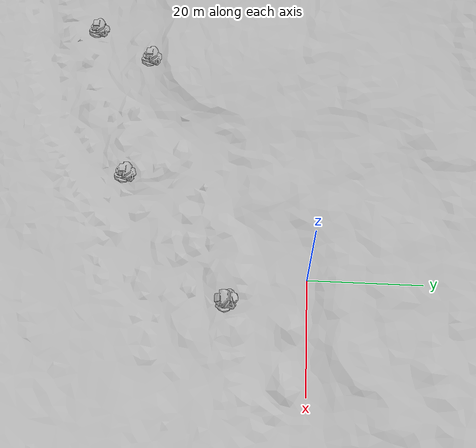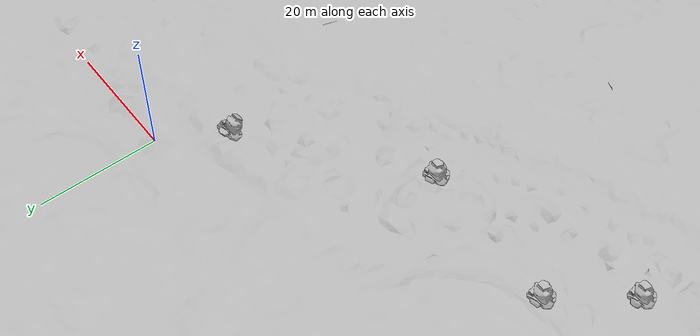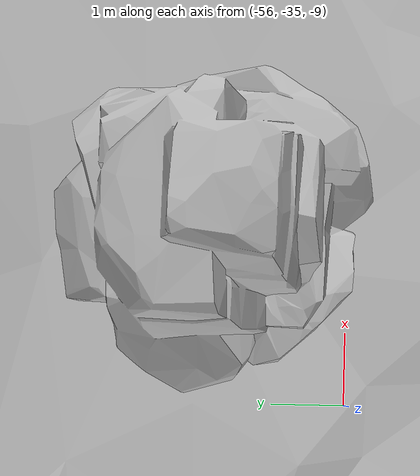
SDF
<sdf version="1.5">
  <world name="default">

    <!-- Martian Gravity-->
    <gravity>0 0 -3.711</gravity>

    <include>
      <uri>model://sun</uri>
    </include>

    <include>
      <uri>model://curiosity_path</uri>
      <name>curiosity_path</name>
      <pose>0 0 0 0 0 0</pose>
    </include>

    <include>
      <uri>model://rock</uri>
      <name>falling_rock1</name>
      <pose>0.800 -13.779 -9.347 0.633 0 0</pose>
    </include>

    <include>
      <uri>model://rock</uri>
      <name>falling_rock2</name>
      <pose>-25.717 -35.972 -10.564 0 0 0</pose>
    </include>

    <include>
      <uri>model://rock</uri>
      <name>falling_rock3</name>
      <pose>-62.056 -46.099 -10.256 0 0 0</pose>
    </include>

    <include>
      <uri>model://rock</uri>
      <name>falling_rock4</name>
      <pose>-53.538 -33.246 -8.731 0 0 0</pose>
    </include>

  </world>
</sdf>

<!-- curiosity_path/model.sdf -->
<sdf version="1.5">
  <model name="curiosity_path">
      <static>true</static>
      <link name='link'>
       <collision name="collision">
        <geometry>
            <mesh>
              <uri>model://curiosity_path/meshes/curiosity_path25k.stl</uri>
              <scale>1 1 1</scale>
            </mesh>
        </geometry>
        <surface>
          <contact>
             <collide_bitmask>0xffff</collide_bitmask>
          </contact>
          <friction>
            <ode>
              <mu>100</mu>
              <mu2>50</mu2>
            </ode>
          </friction>
        </surface>
      </collision>
        <visual name='visual'>
          <geometry>
            <mesh>
              <uri>model://curiosity_path/meshes/curiosity_path25k.dae</uri>
              <scale>1 1 1</scale>
            </mesh>
          </geometry>
        </visual>
      </link>
  </model>
</sdf>

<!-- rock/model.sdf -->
<sdf version='1.4'>
  <model name="rock">
      <static>1</static>
        <link name='link_1'>
            <visual name='visual'>
            <pose frame=''>0 0 0 0 0 0</pose>
            <geometry>
            <mesh>
                <uri>model://rock/meshes/rock.dae</uri>
                <scale>1.0 1.0 1.0</scale>
            </mesh>
            </geometry>
            <cast_shadows>0</cast_shadows>
            <transparency>0</transparency>
        </visual>

        <collision name='collision'>
            <laser_retro>0</laser_retro>
            <pose frame=''>0 0 0 0 0 0</pose>
            <geometry>
            <mesh>
                <uri>model://rock/meshes/rock.dae</uri>
                <scale>1.0 1.0 1.0</scale>
            </mesh>
            </geometry>
        </collision>
        </link>
  </model>
</sdf>
